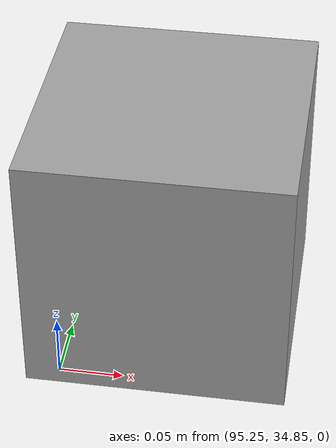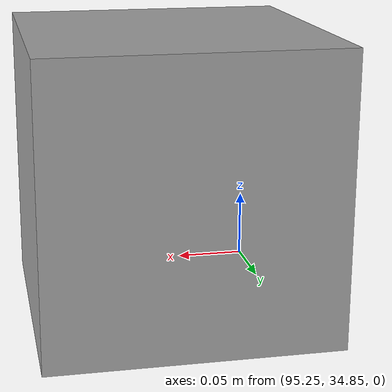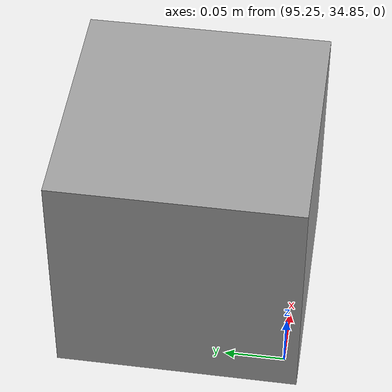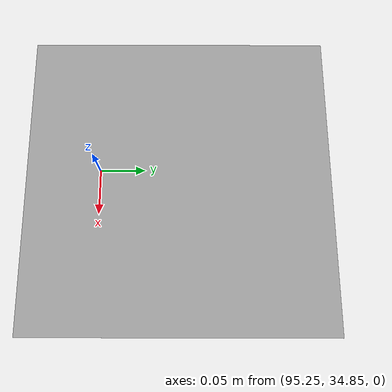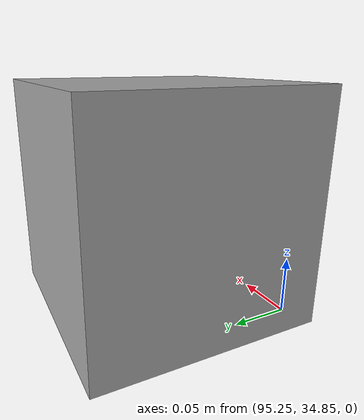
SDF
<sdf version="1.6">
 <world name="default">
  <model name="Blue_Package_1">
   <link name="link">
    <inertial>
     <mass>0.2</mass>
     <inertia><ixx>1</ixx><ixy>0</ixy><ixz>0</ixz><iyy>1</iyy><iyz>0</iyz><izz>1</izz></inertia>
    </inertial>
    <visual name="visual">
     <geometry><mesh><uri>model://Blue_Package/meshes/bluebox.dae</uri><scale>1 1 1</scale></mesh></geometry>
     <material>
      <emissive>0 0 1 0</emissive>
      <shader type="vertex"><normal_map>__default__</normal_map></shader>
     </material>
    </visual>
    <collision name="collision">
     <geometry><box><size>0.2 0.2 0.2</size></box></geometry>
     <surface>
      <friction>
       <ode><mu>1</mu><mu2>1</mu2><fdir1>0 0 0</fdir1><slip1>0</slip1><slip2>0</slip2></ode>
       <torsional>
        <coefficient>1</coefficient>
        <patch_radius>0</patch_radius>
        <surface_radius>0</surface_radius>
        <use_patch_radius>1</use_patch_radius>
        <ode><slip>0</slip></ode>
       </torsional>
      </friction>
      <bounce><restitution_coefficient>0</restitution_coefficient><threshold>1e+06</threshold></bounce>
      <contact>
       <collide_without_contact>0</collide_without_contact>
       <collide_without_contact_bitmask>1</collide_without_contact_bitmask>
       <collide_bitmask>1</collide_bitmask>
       <ode>
        <soft_cfm>0</soft_cfm>
        <soft_erp>0.2</soft_erp>
        <kp>1e+13</kp>
        <kd>1</kd>
        <max_vel>0.1</max_vel>
        <min_depth>0.001</min_depth>
       </ode>
       <bullet>
        <split_impulse>1</split_impulse>
        <split_impulse_penetration_threshold>-0.01</split_impulse_penetration_threshold>
        <soft_cfm>0</soft_cfm>
        <soft_erp>0.2</soft_erp>
        <kp>1e+13</kp>
        <kd>1</kd>
       </bullet>
      </contact>
     </surface>
    </collision>
   </link>
   <static>0</static>
   <pose>95.326 34.9379 0.09902 0 -0 0</pose>
  </model>
 </world>
</sdf>
